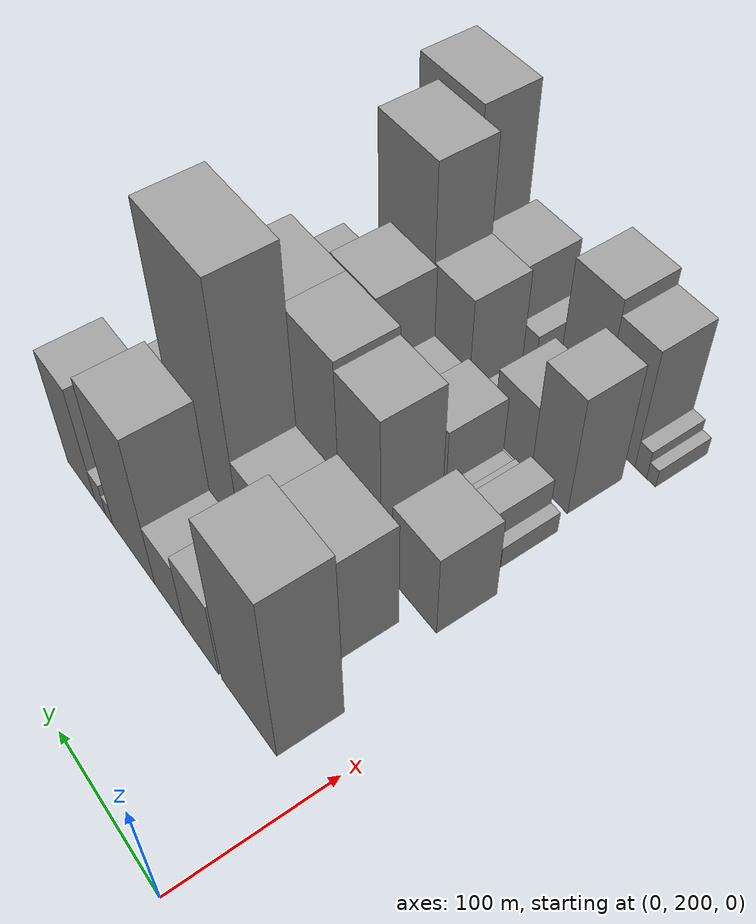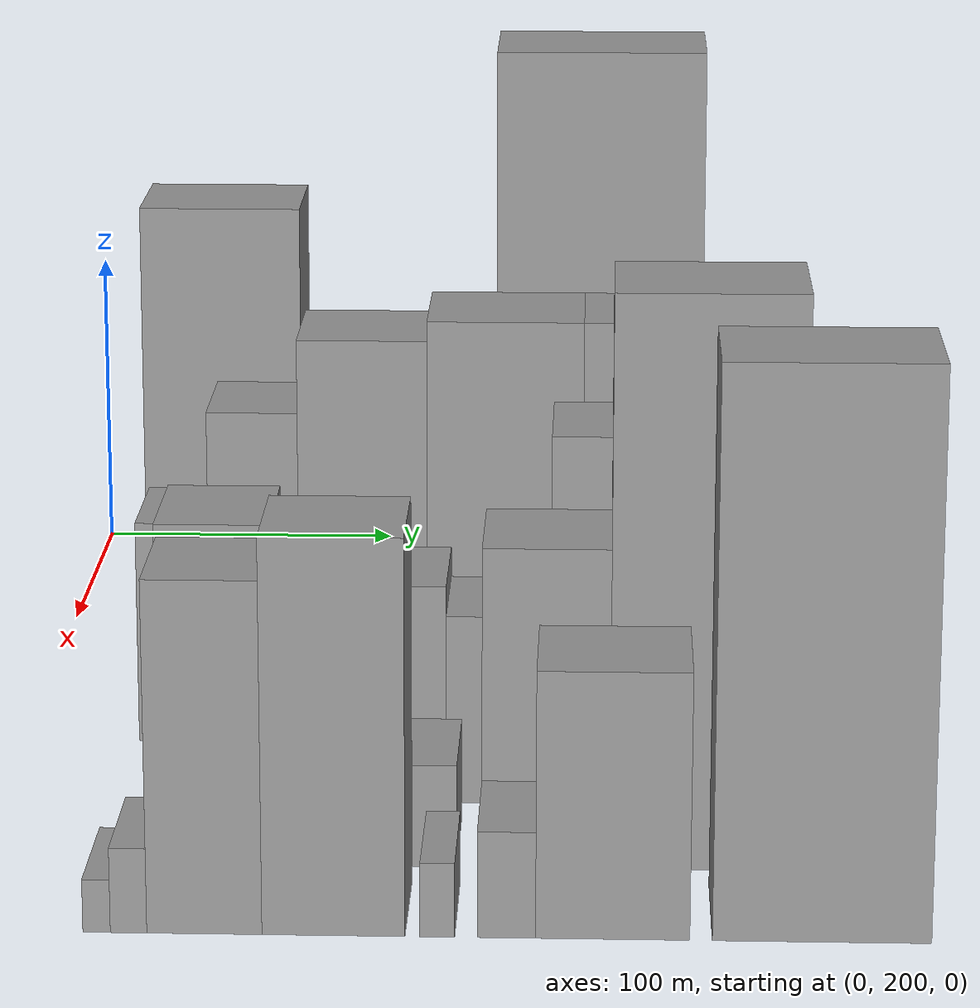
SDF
<sdf version="1.6">
 <world name="default">
  <model name="building_35">
   <static>1</static>
   <pose>100.0000 251.9744 0 0.000000 0.000000 0.000000</pose>
   <link name="link">
    <pose>0 0 72.00 0 0 0</pose>
    <collision name="collision"><geometry><box><size>40.0000 51.3581 144.0000</size></box></geometry></collision>
    <visual name="visual">
     <cast_shadows>0</cast_shadows>
     <geometry><box><size>40.0000 51.3581 144.0000</size></box></geometry>
     <material>
      <script>
       <uri>model://grey_wall/materials/scripts</uri>
       <uri>model://grey_wall/materials/textures</uri>
       <name>vrc/grey_wall</name>
      </script>
     </material>
    </visual>
   </link>
  </model>
  <model name="building_36">
   <static>1</static>
   <pose>100.0000 297.9914 0 0.000000 0.000000 0.000000</pose>
   <link name="link">
    <pose>0 0 33.00 0 0 0</pose>
    <collision name="collision"><geometry><box><size>40.0000 34.6758 66.0000</size></box></geometry></collision>
    <visual name="visual">
     <cast_shadows>0</cast_shadows>
     <geometry><box><size>40.0000 34.6758 66.0000</size></box></geometry>
     <material>
      <script>
       <uri>model://grey_wall/materials/scripts</uri>
       <uri>model://grey_wall/materials/textures</uri>
       <name>vrc/grey_wall</name>
      </script>
     </material>
    </visual>
   </link>
  </model>
  <model name="building_37">
   <static>1</static>
   <pose>100.0000 330.6113 0 0.000000 0.000000 0.000000</pose>
   <link name="link">
    <pose>0 0 27.00 0 0 0</pose>
    <collision name="collision"><geometry><box><size>40.0000 30.5640 54.0000</size></box></geometry></collision>
    <visual name="visual">
     <cast_shadows>0</cast_shadows>
     <geometry><box><size>40.0000 30.5640 54.0000</size></box></geometry>
     <material>
      <script>
       <uri>model://grey_wall/materials/scripts</uri>
       <uri>model://grey_wall/materials/textures</uri>
       <name>vrc/grey_wall</name>
      </script>
     </material>
    </visual>
   </link>
  </model>
  <model name="building_38">
   <static>1</static>
   <pose>100.0000 369.2119 0 0.000000 0.000000 0.000000</pose>
   <link name="link">
    <pose>0 0 63.00 0 0 0</pose>
    <collision name="collision"><geometry><box><size>40.0000 46.6374 126.0000</size></box></geometry></collision>
    <visual name="visual">
     <cast_shadows>0</cast_shadows>
     <geometry><box><size>40.0000 46.6374 126.0000</size></box></geometry>
     <material>
      <script>
       <uri>model://grey_wall/materials/scripts</uri>
       <uri>model://grey_wall/materials/textures</uri>
       <name>vrc/grey_wall</name>
      </script>
     </material>
    </visual>
   </link>
  </model>
  <model name="building_39">
   <static>1</static>
   <pose>100.0000 396.7341 0 0.000000 0.000000 0.000000</pose>
   <link name="link">
    <pose>0 0 9.00 0 0 0</pose>
    <collision name="collision"><geometry><box><size>40.0000 8.4070 18.0000</size></box></geometry></collision>
    <visual name="visual">
     <cast_shadows>0</cast_shadows>
     <geometry><box><size>40.0000 8.4070 18.0000</size></box></geometry>
     <material>
      <script>
       <uri>model://grey_wall/materials/scripts</uri>
       <uri>model://grey_wall/materials/textures</uri>
       <name>vrc/grey_wall</name>
      </script>
     </material>
    </visual>
   </link>
  </model>
  <model name="building_40">
   <static>1</static>
   <pose>100.0000 407.2230 0 0.000000 0.000000 0.000000</pose>
   <link name="link">
    <pose>0 0 13.50 0 0 0</pose>
    <collision name="collision"><geometry><box><size>40.0000 12.5708 27.0000</size></box></geometry></collision>
    <visual name="visual">
     <cast_shadows>0</cast_shadows>
     <geometry><box><size>40.0000 12.5708 27.0000</size></box></geometry>
     <material>
      <script>
       <uri>model://grey_wall/materials/scripts</uri>
       <uri>model://grey_wall/materials/textures</uri>
       <name>vrc/grey_wall</name>
      </script>
     </material>
    </visual>
   </link>
  </model>
  <model name="building_41">
   <static>1</static>
   <pose>100.0000 430.0035 0 0.000000 0.000000 0.000000</pose>
   <link name="link">
    <pose>0 0 48.00 0 0 0</pose>
    <collision name="collision"><geometry><box><size>40.0000 32.9901 96.0000</size></box></geometry></collision>
    <visual name="visual">
     <cast_shadows>0</cast_shadows>
     <geometry><box><size>40.0000 32.9901 96.0000</size></box></geometry>
     <material>
      <script>
       <uri>model://grey_wall/materials/scripts</uri>
       <uri>model://grey_wall/materials/textures</uri>
       <name>vrc/grey_wall</name>
      </script>
     </material>
    </visual>
   </link>
  </model>
  <model name="building_88">
   <static>1</static>
   <pose>152.0000 277.7414 0 0.000000 0.000000 0.000000</pose>
   <link name="link">
    <pose>0 0 45.00 0 0 0</pose>
    <collision name="collision"><geometry><box><size>40.0000 51.8714 90.0000</size></box></geometry></collision>
    <visual name="visual">
     <cast_shadows>0</cast_shadows>
     <geometry><box><size>40.0000 51.8714 90.0000</size></box></geometry>
     <material>
      <script>
       <uri>model://grey_wall/materials/scripts</uri>
       <uri>model://grey_wall/materials/textures</uri>
       <name>vrc/grey_wall</name>
      </script>
     </material>
    </visual>
   </link>
  </model>
  <model name="building_89">
   <static>1</static>
   <pose>152.0000 323.1185 0 0.000000 0.000000 0.000000</pose>
   <link name="link">
    <pose>0 0 36.00 0 0 0</pose>
    <collision name="collision"><geometry><box><size>40.0000 38.8828 72.0000</size></box></geometry></collision>
    <visual name="visual">
     <cast_shadows>0</cast_shadows>
     <geometry><box><size>40.0000 38.8828 72.0000</size></box></geometry>
     <material>
      <script>
       <uri>model://grey_wall/materials/scripts</uri>
       <uri>model://grey_wall/materials/textures</uri>
       <name>vrc/grey_wall</name>
      </script>
     </material>
    </visual>
   </link>
  </model>
  <model name="building_90">
   <static>1</static>
   <pose>152.0000 374.3537 0 0.000000 0.000000 0.000000</pose>
   <link name="link">
    <pose>0 0 102.00 0 0 0</pose>
    <collision name="collision"><geometry><box><size>40.0000 63.5877 204.0000</size></box></geometry></collision>
    <visual name="visual">
     <cast_shadows>0</cast_shadows>
     <geometry><box><size>40.0000 63.5877 204.0000</size></box></geometry>
     <material>
      <script>
       <uri>model://grey_wall/materials/scripts</uri>
       <uri>model://grey_wall/materials/textures</uri>
       <name>vrc/grey_wall</name>
      </script>
     </material>
    </visual>
   </link>
  </model>
  <model name="building_91">
   <static>1</static>
   <pose>152.0000 423.8537 0 0.000000 0.000000 0.000000</pose>
   <link name="link">
    <pose>0 0 33.00 0 0 0</pose>
    <collision name="collision"><geometry><box><size>40.0000 35.4122 66.0000</size></box></geometry></collision>
    <visual name="visual">
     <cast_shadows>0</cast_shadows>
     <geometry><box><size>40.0000 35.4122 66.0000</size></box></geometry>
     <material>
      <script>
       <uri>model://grey_wall/materials/scripts</uri>
       <uri>model://grey_wall/materials/textures</uri>
       <name>vrc/grey_wall</name>
      </script>
     </material>
    </visual>
   </link>
  </model>
  <model name="building_92">
   <static>1</static>
   <pose>152.0000 446.6012 0 0.000000 0.000000 0.000000</pose>
   <link name="link">
    <pose>0 0 10.50 0 0 0</pose>
    <collision name="collision"><geometry><box><size>40.0000 10.0827 21.0000</size></box></geometry></collision>
    <visual name="visual">
     <cast_shadows>0</cast_shadows>
     <geometry><box><size>40.0000 10.0827 21.0000</size></box></geometry>
     <material>
      <script>
       <uri>model://grey_wall/materials/scripts</uri>
       <uri>model://grey_wall/materials/textures</uri>
       <name>vrc/grey_wall</name>
      </script>
     </material>
    </visual>
   </link>
  </model>
  <model name="building_142">
   <static>1</static>
   <pose>204.0000 254.6923 0 0.000000 0.000000 0.000000</pose>
   <link name="link">
    <pose>0 0 34.50 0 0 0</pose>
    <collision name="collision"><geometry><box><size>40.0000 39.2417 69.0000</size></box></geometry></collision>
    <visual name="visual">
     <cast_shadows>0</cast_shadows>
     <geometry><box><size>40.0000 39.2417 69.0000</size></box></geometry>
     <material>
      <script>
       <uri>model://grey_wall/materials/scripts</uri>
       <uri>model://grey_wall/materials/textures</uri>
       <name>vrc/grey_wall</name>
      </script>
     </material>
    </visual>
   </link>
  </model>
  <model name="building_143">
   <static>1</static>
   <pose>204.0000 303.7212 0 0.000000 0.000000 0.000000</pose>
   <link name="link">
    <pose>0 0 63.00 0 0 0</pose>
    <collision name="collision"><geometry><box><size>40.0000 38.8161 126.0000</size></box></geometry></collision>
    <visual name="visual">
     <cast_shadows>0</cast_shadows>
     <geometry><box><size>40.0000 38.8161 126.0000</size></box></geometry>
     <material>
      <script>
       <uri>model://grey_wall/materials/scripts</uri>
       <uri>model://grey_wall/materials/textures</uri>
       <name>vrc/grey_wall</name>
      </script>
     </material>
    </visual>
   </link>
  </model>
  <model name="building_144">
   <static>1</static>
   <pose>204.0000 346.5047 0 0.000000 0.000000 0.000000</pose>
   <link name="link">
    <pose>0 0 66.00 0 0 0</pose>
    <collision name="collision"><geometry><box><size>40.0000 46.7510 132.0000</size></box></geometry></collision>
    <visual name="visual">
     <cast_shadows>0</cast_shadows>
     <geometry><box><size>40.0000 46.7510 132.0000</size></box></geometry>
     <material>
      <script>
       <uri>model://grey_wall/materials/scripts</uri>
       <uri>model://grey_wall/materials/textures</uri>
       <name>vrc/grey_wall</name>
      </script>
     </material>
    </visual>
   </link>
  </model>
  <model name="building_145">
   <static>1</static>
   <pose>204.0000 395.4128 0 0.000000 0.000000 0.000000</pose>
   <link name="link">
    <pose>0 0 66.00 0 0 0</pose>
    <collision name="collision"><geometry><box><size>40.0000 51.0651 132.0000</size></box></geometry></collision>
    <visual name="visual">
     <cast_shadows>0</cast_shadows>
     <geometry><box><size>40.0000 51.0651 132.0000</size></box></geometry>
     <material>
      <script>
       <uri>model://grey_wall/materials/scripts</uri>
       <uri>model://grey_wall/materials/textures</uri>
       <name>vrc/grey_wall</name>
      </script>
     </material>
    </visual>
   </link>
  </model>
  <model name="building_146">
   <static>1</static>
   <pose>204.0000 441.7545 0 0.000000 0.000000 0.000000</pose>
   <link name="link">
    <pose>0 0 36.00 0 0 0</pose>
    <collision name="collision"><geometry><box><size>40.0000 41.6184 72.0000</size></box></geometry></collision>
    <visual name="visual">
     <cast_shadows>0</cast_shadows>
     <geometry><box><size>40.0000 41.6184 72.0000</size></box></geometry>
     <material>
      <script>
       <uri>model://grey_wall/materials/scripts</uri>
       <uri>model://grey_wall/materials/textures</uri>
       <name>vrc/grey_wall</name>
      </script>
     </material>
    </visual>
   </link>
  </model>
  <model name="building_193">
   <static>1</static>
   <pose>256.0000 250.7907 0 0.000000 0.000000 0.000000</pose>
   <link name="link">
    <pose>0 0 9.00 0 0 0</pose>
    <collision name="collision"><geometry><box><size>40.0000 7.9480 18.0000</size></box></geometry></collision>
    <visual name="visual">
     <cast_shadows>0</cast_shadows>
     <geometry><box><size>40.0000 7.9480 18.0000</size></box></geometry>
     <material>
      <script>
       <uri>model://grey_wall/materials/scripts</uri>
       <uri>model://grey_wall/materials/textures</uri>
       <name>vrc/grey_wall</name>
      </script>
     </material>
    </visual>
   </link>
  </model>
  <model name="building_194">
   <static>1</static>
   <pose>256.0000 264.5294 0 0.000000 0.000000 0.000000</pose>
   <link name="link">
    <pose>0 0 19.50 0 0 0</pose>
    <collision name="collision"><geometry><box><size>40.0000 19.5294 39.0000</size></box></geometry></collision>
    <visual name="visual">
     <cast_shadows>0</cast_shadows>
     <geometry><box><size>40.0000 19.5294 39.0000</size></box></geometry>
     <material>
      <script>
       <uri>model://grey_wall/materials/scripts</uri>
       <uri>model://grey_wall/materials/textures</uri>
       <name>vrc/grey_wall</name>
      </script>
     </material>
    </visual>
   </link>
  </model>
  <model name="building_195">
   <static>1</static>
   <pose>256.0000 280.1240 0 0.000000 0.000000 0.000000</pose>
   <link name="link">
    <pose>0 0 12.00 0 0 0</pose>
    <collision name="collision"><geometry><box><size>40.0000 11.6598 24.0000</size></box></geometry></collision>
    <visual name="visual">
     <cast_shadows>0</cast_shadows>
     <geometry><box><size>40.0000 11.6598 24.0000</size></box></geometry>
     <material>
      <script>
       <uri>model://grey_wall/materials/scripts</uri>
       <uri>model://grey_wall/materials/textures</uri>
       <name>vrc/grey_wall</name>
      </script>
     </material>
    </visual>
   </link>
  </model>
  <model name="building_196">
   <static>1</static>
   <pose>256.0000 291.0521 0 0.000000 0.000000 0.000000</pose>
   <link name="link">
    <pose>0 0 10.50 0 0 0</pose>
    <collision name="collision"><geometry><box><size>40.0000 10.1964 21.0000</size></box></geometry></collision>
    <visual name="visual">
     <cast_shadows>0</cast_shadows>
     <geometry><box><size>40.0000 10.1964 21.0000</size></box></geometry>
     <material>
      <script>
       <uri>model://grey_wall/materials/scripts</uri>
       <uri>model://grey_wall/materials/textures</uri>
       <name>vrc/grey_wall</name>
      </script>
     </material>
    </visual>
   </link>
  </model>
  <model name="building_197">
   <static>1</static>
   <pose>256.0000 313.5097 0 0.000000 0.000000 0.000000</pose>
   <link name="link">
    <pose>0 0 33.00 0 0 0</pose>
    <collision name="collision"><geometry><box><size>40.0000 34.7188 66.0000</size></box></geometry></collision>
    <visual name="visual">
     <cast_shadows>0</cast_shadows>
     <geometry><box><size>40.0000 34.7188 66.0000</size></box></geometry>
     <material>
      <script>
       <uri>model://grey_wall/materials/scripts</uri>
       <uri>model://grey_wall/materials/textures</uri>
       <name>vrc/grey_wall</name>
      </script>
     </material>
    </visual>
   </link>
  </model>
  <model name="building_198">
   <static>1</static>
   <pose>256.0000 346.0371 0 0.000000 0.000000 0.000000</pose>
   <link name="link">
    <pose>0 0 28.50 0 0 0</pose>
    <collision name="collision"><geometry><box><size>40.0000 30.3360 57.0000</size></box></geometry></collision>
    <visual name="visual">
     <cast_shadows>0</cast_shadows>
     <geometry><box><size>40.0000 30.3360 57.0000</size></box></geometry>
     <material>
      <script>
       <uri>model://grey_wall/materials/scripts</uri>
       <uri>model://grey_wall/materials/textures</uri>
       <name>vrc/grey_wall</name>
      </script>
     </material>
    </visual>
   </link>
  </model>
  <model name="building_199">
   <static>1</static>
   <pose>256.0000 382.4249 0 0.000000 0.000000 0.000000</pose>
   <link name="link">
    <pose>0 0 55.50 0 0 0</pose>
    <collision name="collision"><geometry><box><size>40.0000 42.4395 111.0000</size></box></geometry></collision>
    <visual name="visual">
     <cast_shadows>0</cast_shadows>
     <geometry><box><size>40.0000 42.4395 111.0000</size></box></geometry>
     <material>
      <script>
       <uri>model://grey_wall/materials/scripts</uri>
       <uri>model://grey_wall/materials/textures</uri>
       <name>vrc/grey_wall</name>
      </script>
     </material>
    </visual>
   </link>
  </model>
  <model name="building_200">
   <static>1</static>
   <pose>256.0000 429.8114 0 0.000000 0.000000 0.000000</pose>
   <link name="link">
    <pose>0 0 37.50 0 0 0</pose>
    <collision name="collision"><geometry><box><size>40.0000 40.3337 75.0000</size></box></geometry></collision>
    <visual name="visual">
     <cast_shadows>0</cast_shadows>
     <geometry><box><size>40.0000 40.3337 75.0000</size></box></geometry>
     <material>
      <script>
       <uri>model://grey_wall/materials/scripts</uri>
       <uri>model://grey_wall/materials/textures</uri>
       <name>vrc/grey_wall</name>
      </script>
     </material>
    </visual>
   </link>
  </model>
  <model name="building_237">
   <static>1</static>
   <pose>308.0000 268.4404 0 0.000000 0.000000 0.000000</pose>
   <link name="link">
    <pose>0 0 49.50 0 0 0</pose>
    <collision name="collision"><geometry><box><size>40.0000 31.8579 99.0000</size></box></geometry></collision>
    <visual name="visual">
     <cast_shadows>0</cast_shadows>
     <geometry><box><size>40.0000 31.8579 99.0000</size></box></geometry>
     <material>
      <script>
       <uri>model://grey_wall/materials/scripts</uri>
       <uri>model://grey_wall/materials/textures</uri>
       <name>vrc/grey_wall</name>
      </script>
     </material>
    </visual>
   </link>
  </model>
  <model name="building_238">
   <static>1</static>
   <pose>308.0000 301.5437 0 0.000000 0.000000 0.000000</pose>
   <link name="link">
    <pose>0 0 30.00 0 0 0</pose>
    <collision name="collision"><geometry><box><size>40.0000 34.3488 60.0000</size></box></geometry></collision>
    <visual name="visual">
     <cast_shadows>0</cast_shadows>
     <geometry><box><size>40.0000 34.3488 60.0000</size></box></geometry>
     <material>
      <script>
       <uri>model://grey_wall/materials/scripts</uri>
       <uri>model://grey_wall/materials/textures</uri>
       <name>vrc/grey_wall</name>
      </script>
     </material>
    </visual>
   </link>
  </model>
  <model name="building_239">
   <static>1</static>
   <pose>308.0000 327.2899 0 0.000000 0.000000 0.000000</pose>
   <link name="link">
    <pose>0 0 15.00 0 0 0</pose>
    <collision name="collision"><geometry><box><size>40.0000 17.1435 30.0000</size></box></geometry></collision>
    <visual name="visual">
     <cast_shadows>0</cast_shadows>
     <geometry><box><size>40.0000 17.1435 30.0000</size></box></geometry>
     <material>
      <script>
       <uri>model://grey_wall/materials/scripts</uri>
       <uri>model://grey_wall/materials/textures</uri>
       <name>vrc/grey_wall</name>
      </script>
     </material>
    </visual>
   </link>
  </model>
  <model name="building_240">
   <static>1</static>
   <pose>308.0000 360.6740 0 0.000000 0.000000 0.000000</pose>
   <link name="link">
    <pose>0 0 46.50 0 0 0</pose>
    <collision name="collision"><geometry><box><size>40.0000 35.6249 93.0000</size></box></geometry></collision>
    <visual name="visual">
     <cast_shadows>0</cast_shadows>
     <geometry><box><size>40.0000 35.6249 93.0000</size></box></geometry>
     <material>
      <script>
       <uri>model://grey_wall/materials/scripts</uri>
       <uri>model://grey_wall/materials/textures</uri>
       <name>vrc/grey_wall</name>
      </script>
     </material>
    </visual>
   </link>
  </model>
  <model name="building_241">
   <static>1</static>
   <pose>308.0000 405.1352 0 0.000000 0.000000 0.000000</pose>
   <link name="link">
    <pose>0 0 82.50 0 0 0</pose>
    <collision name="collision"><geometry><box><size>40.0000 53.2974 165.0000</size></box></geometry></collision>
    <visual name="visual">
     <cast_shadows>0</cast_shadows>
     <geometry><box><size>40.0000 53.2974 165.0000</size></box></geometry>
     <material>
      <script>
       <uri>model://grey_wall/materials/scripts</uri>
       <uri>model://grey_wall/materials/textures</uri>
       <name>vrc/grey_wall</name>
      </script>
     </material>
    </visual>
   </link>
  </model>
  <model name="building_283">
   <static>1</static>
   <pose>360.0000 241.1236 0 0.000000 0.000000 0.000000</pose>
   <link name="link">
    <pose>0 0 7.50 0 0 0</pose>
    <collision name="collision"><geometry><box><size>40.0000 7.3829 15.0000</size></box></geometry></collision>
    <visual name="visual">
     <cast_shadows>0</cast_shadows>
     <geometry><box><size>40.0000 7.3829 15.0000</size></box></geometry>
     <material>
      <script>
       <uri>model://grey_wall/materials/scripts</uri>
       <uri>model://grey_wall/materials/textures</uri>
       <name>vrc/grey_wall</name>
      </script>
     </material>
    </visual>
   </link>
  </model>
  <model name="building_284">
   <static>1</static>
   <pose>360.0000 249.7235 0 0.000000 0.000000 0.000000</pose>
   <link name="link">
    <pose>0 0 12.00 0 0 0</pose>
    <collision name="collision"><geometry><box><size>40.0000 9.8171 24.0000</size></box></geometry></collision>
    <visual name="visual">
     <cast_shadows>0</cast_shadows>
     <geometry><box><size>40.0000 9.8171 24.0000</size></box></geometry>
     <material>
      <script>
       <uri>model://grey_wall/materials/scripts</uri>
       <uri>model://grey_wall/materials/textures</uri>
       <name>vrc/grey_wall</name>
      </script>
     </material>
    </visual>
   </link>
  </model>
  <model name="building_285">
   <static>1</static>
   <pose>360.0000 270.0991 0 0.000000 0.000000 0.000000</pose>
   <link name="link">
    <pose>0 0 49.50 0 0 0</pose>
    <collision name="collision"><geometry><box><size>40.0000 30.9341 99.0000</size></box></geometry></collision>
    <visual name="visual">
     <cast_shadows>0</cast_shadows>
     <geometry><box><size>40.0000 30.9341 99.0000</size></box></geometry>
     <material>
      <script>
       <uri>model://grey_wall/materials/scripts</uri>
       <uri>model://grey_wall/materials/textures</uri>
       <name>vrc/grey_wall</name>
      </script>
     </material>
    </visual>
   </link>
  </model>
  <model name="building_286">
   <static>1</static>
   <pose>360.0000 304.7515 0 0.000000 0.000000 0.000000</pose>
   <link name="link">
    <pose>0 0 55.50 0 0 0</pose>
    <collision name="collision"><geometry><box><size>40.0000 38.3708 111.0000</size></box></geometry></collision>
    <visual name="visual">
     <cast_shadows>0</cast_shadows>
     <geometry><box><size>40.0000 38.3708 111.0000</size></box></geometry>
     <material>
      <script>
       <uri>model://grey_wall/materials/scripts</uri>
       <uri>model://grey_wall/materials/textures</uri>
       <name>vrc/grey_wall</name>
      </script>
     </material>
    </visual>
   </link>
  </model>
  <model name="building_287">
   <static>1</static>
   <pose>360.0000 332.5897 0 0.000000 0.000000 0.000000</pose>
   <link name="link">
    <pose>0 0 10.50 0 0 0</pose>
    <collision name="collision"><geometry><box><size>40.0000 9.3056 21.0000</size></box></geometry></collision>
    <visual name="visual">
     <cast_shadows>0</cast_shadows>
     <geometry><box><size>40.0000 9.3056 21.0000</size></box></geometry>
     <material>
      <script>
       <uri>model://grey_wall/materials/scripts</uri>
       <uri>model://grey_wall/materials/textures</uri>
       <name>vrc/grey_wall</name>
      </script>
     </material>
    </visual>
   </link>
  </model>
  <model name="building_288">
   <static>1</static>
   <pose>360.0000 351.0468 0 0.000000 0.000000 0.000000</pose>
   <link name="link">
    <pose>0 0 15.00 0 0 0</pose>
    <collision name="collision"><geometry><box><size>40.0000 15.6086 30.0000</size></box></geometry></collision>
    <visual name="visual">
     <cast_shadows>0</cast_shadows>
     <geometry><box><size>40.0000 15.6086 30.0000</size></box></geometry>
     <material>
      <script>
       <uri>model://grey_wall/materials/scripts</uri>
       <uri>model://grey_wall/materials/textures</uri>
       <name>vrc/grey_wall</name>
      </script>
     </material>
    </visual>
   </link>
  </model>
  <model name="building_289">
   <static>1</static>
   <pose>360.0000 379.4332 0 0.000000 0.000000 0.000000</pose>
   <link name="link">
    <pose>0 0 37.50 0 0 0</pose>
    <collision name="collision"><geometry><box><size>40.0000 41.1642 75.0000</size></box></geometry></collision>
    <visual name="visual">
     <cast_shadows>0</cast_shadows>
     <geometry><box><size>40.0000 41.1642 75.0000</size></box></geometry>
     <material>
      <script>
       <uri>model://grey_wall/materials/scripts</uri>
       <uri>model://grey_wall/materials/textures</uri>
       <name>vrc/grey_wall</name>
      </script>
     </material>
    </visual>
   </link>
  </model>
  <model name="building_290">
   <static>1</static>
   <pose>360.0000 435.1897 0 0.000000 0.000000 0.000000</pose>
   <link name="link">
    <pose>0 0 79.50 0 0 0</pose>
    <collision name="collision"><geometry><box><size>40.0000 58.3487 159.0000</size></box></geometry></collision>
    <visual name="visual">
     <cast_shadows>0</cast_shadows>
     <geometry><box><size>40.0000 58.3487 159.0000</size></box></geometry>
     <material>
      <script>
       <uri>model://grey_wall/materials/scripts</uri>
       <uri>model://grey_wall/materials/textures</uri>
       <name>vrc/grey_wall</name>
      </script>
     </material>
    </visual>
   </link>
  </model>
 </world>
</sdf>
